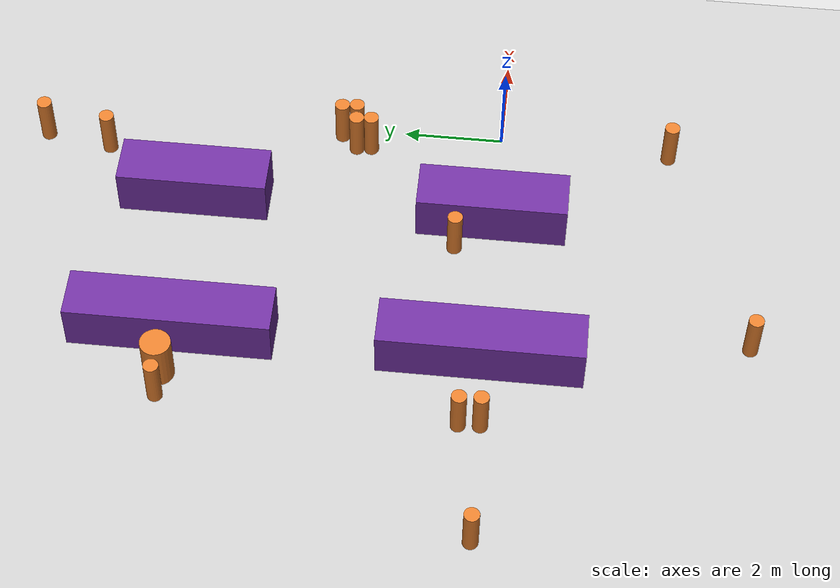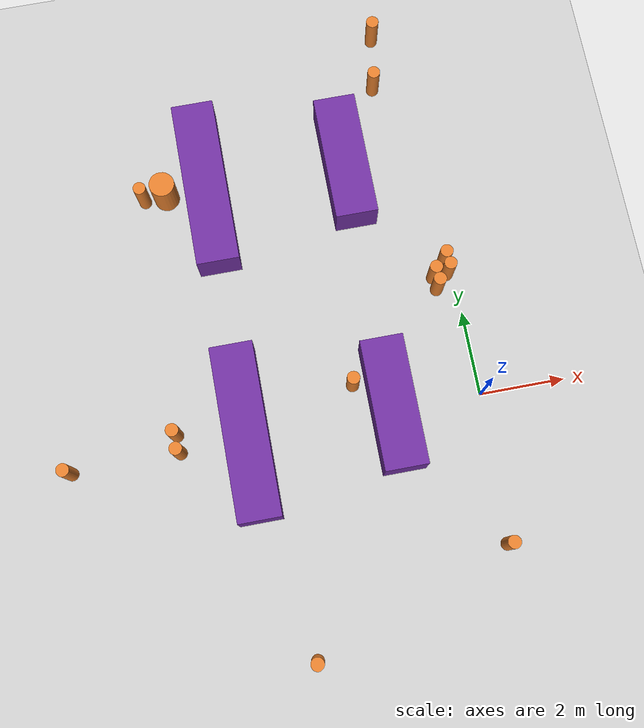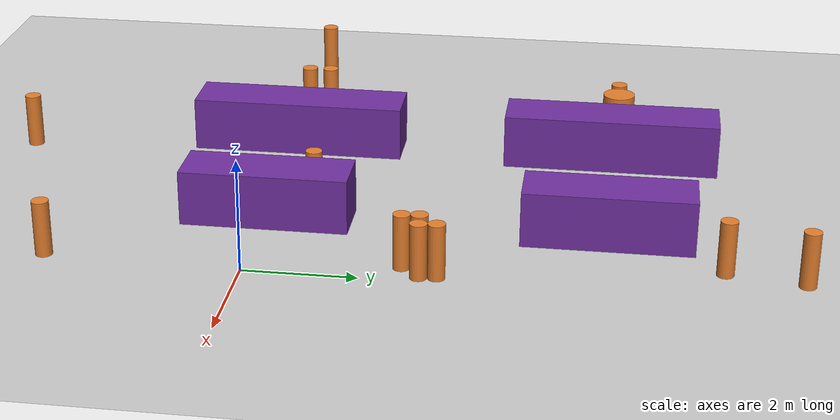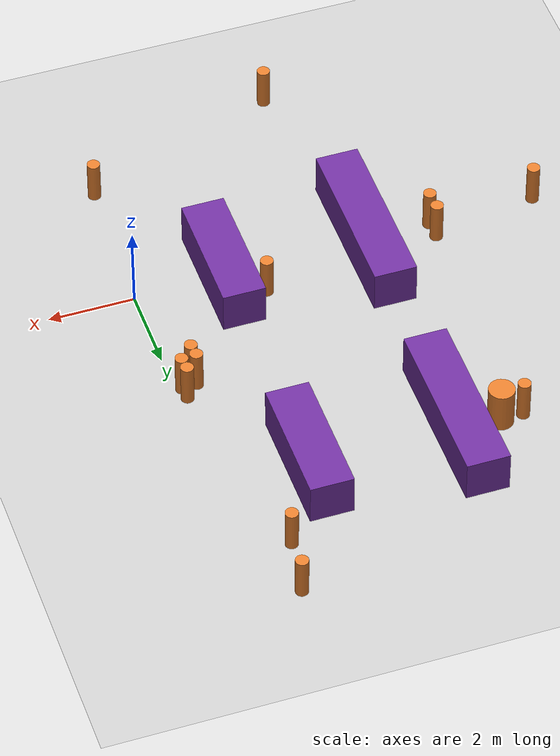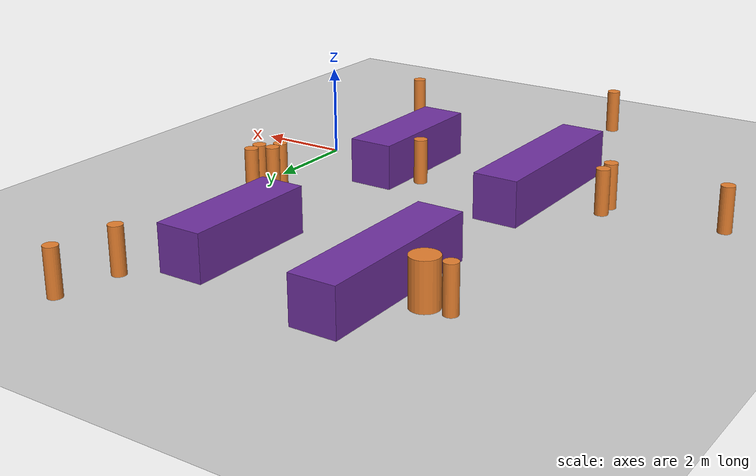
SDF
<sdf version="1.7">
 <world name="default">
  <model name="ground_plane">
   <static>1</static>
   <link name="link">
    <collision name="collision">
     <geometry><plane><normal>0 0 1</normal><size>100 100</size></plane></geometry>
     <surface>
      <contact><collide_bitmask>65535</collide_bitmask></contact>
      <friction><ode><mu>100</mu><mu2>50</mu2></ode></friction>
     </surface>
    </collision>
    <visual name="visual">
     <cast_shadows>0</cast_shadows>
     <geometry><plane><normal>0 0 1</normal><size>100 100</size></plane></geometry>
     <material>
      <script><uri>file://media/materials/scripts/gazebo.material</uri><name>Gazebo/Grey</name></script>
     </material>
    </visual>
   </link>
  </model>
  <model name="B_1_4_0">
   <link name="link_0">
    <inertial>
     <mass>40</mass>
     <inertia><ixx>56.6667</ixx><ixy>0</ixy><ixz>0</ixz><iyy>6.66667</iyy><iyz>0</iyz><izz>56.6667</izz></inertia>
    </inertial>
    <visual name="visual">
     <geometry><box><size>1 4 1</size></box></geometry>
     <material>
      <lighting>1</lighting>
      <script><uri>file://media/materials/scripts/gazebo.material</uri><name>Gazebo/Grey</name></script>
      <shader type="pixel"><normal_map>__default__</normal_map></shader>
      <ambient>0.44 0.19 0.63 1</ambient>
      <diffuse>0.7 0.7 0.7 1</diffuse>
      <specular>0.01 0.01 0.01 1</specular>
      <emissive>0 0 0 1</emissive>
     </material>
    </visual>
    <collision name="collision">
     <geometry><box><size>1 4 1</size></box></geometry>
     <surface>
      <friction>
       <ode><mu>1</mu><mu2>1</mu2><fdir1>0 0 0</fdir1><slip1>0</slip1><slip2>0</slip2></ode>
       <torsional>
        <coefficient>1</coefficient>
        <patch_radius>0</patch_radius>
        <surface_radius>0</surface_radius>
        <use_patch_radius>1</use_patch_radius>
        <ode><slip>0</slip></ode>
       </torsional>
      </friction>
      <bounce><restitution_coefficient>0</restitution_coefficient><threshold>1e+06</threshold></bounce>
      <contact>
       <collide_without_contact>0</collide_without_contact>
       <collide_without_contact_bitmask>1</collide_without_contact_bitmask>
       <collide_bitmask>1</collide_bitmask>
       <ode>
        <soft_cfm>0</soft_cfm>
        <soft_erp>0.2</soft_erp>
        <kp>1e+13</kp>
        <kd>1</kd>
        <max_vel>0.01</max_vel>
        <min_depth>0</min_depth>
       </ode>
       <bullet>
        <split_impulse>1</split_impulse>
        <split_impulse_penetration_threshold>-0.01</split_impulse_penetration_threshold>
        <soft_cfm>0</soft_cfm>
        <soft_erp>0.2</soft_erp>
        <kp>1e+13</kp>
        <kd>1</kd>
       </bullet>
      </contact>
     </surface>
    </collision>
   </link>
   <static>0</static>
   <pose>-5.4852 0.015964 0.5 0 -0 0</pose>
  </model>
  <model name="B_1_4_5">
   <link name="link_0">
    <inertial>
     <mass>40</mass>
     <inertia><ixx>56.6667</ixx><ixy>0</ixy><ixz>0</ixz><iyy>6.66667</iyy><iyz>0</iyz><izz>56.6667</izz></inertia>
    </inertial>
    <visual name="visual">
     <geometry><box><size>1 4 1</size></box></geometry>
     <material>
      <lighting>1</lighting>
      <script><uri>file://media/materials/scripts/gazebo.material</uri><name>Gazebo/Grey</name></script>
      <shader type="pixel"><normal_map>__default__</normal_map></shader>
      <ambient>0.44 0.19 0.63 1</ambient>
      <diffuse>0.7 0.7 0.7 1</diffuse>
      <specular>0.01 0.01 0.01 1</specular>
      <emissive>0 0 0 1</emissive>
     </material>
    </visual>
    <collision name="collision">
     <geometry><box><size>1 4 1</size></box></geometry>
     <surface>
      <friction>
       <ode><mu>1</mu><mu2>1</mu2><fdir1>0 0 0</fdir1><slip1>0</slip1><slip2>0</slip2></ode>
       <torsional>
        <coefficient>1</coefficient>
        <patch_radius>0</patch_radius>
        <surface_radius>0</surface_radius>
        <use_patch_radius>1</use_patch_radius>
        <ode><slip>0</slip></ode>
       </torsional>
      </friction>
      <bounce><restitution_coefficient>0</restitution_coefficient><threshold>1e+06</threshold></bounce>
      <contact>
       <collide_without_contact>0</collide_without_contact>
       <collide_without_contact_bitmask>1</collide_without_contact_bitmask>
       <collide_bitmask>1</collide_bitmask>
       <ode>
        <soft_cfm>0</soft_cfm>
        <soft_erp>0.2</soft_erp>
        <kp>1e+13</kp>
        <kd>1</kd>
        <max_vel>0.01</max_vel>
        <min_depth>0</min_depth>
       </ode>
       <bullet>
        <split_impulse>1</split_impulse>
        <split_impulse_penetration_threshold>-0.01</split_impulse_penetration_threshold>
        <soft_cfm>0</soft_cfm>
        <soft_erp>0.2</soft_erp>
        <kp>1e+13</kp>
        <kd>1</kd>
       </bullet>
      </contact>
     </surface>
    </collision>
   </link>
   <static>0</static>
   <pose>-5.44605 6.01143 0.5 0 -0 0</pose>
  </model>
  <model name="B_1_3_1">
   <link name="link_1">
    <inertial>
     <mass>30</mass>
     <inertia><ixx>25</ixx><ixy>0</ixy><ixz>0</ixz><iyy>5</iyy><iyz>0</iyz><izz>25</izz></inertia>
    </inertial>
    <visual name="visual">
     <geometry><box><size>1 3 1</size></box></geometry>
     <material>
      <lighting>1</lighting>
      <script><uri>file://media/materials/scripts/gazebo.material</uri><name>Gazebo/Grey</name></script>
      <shader type="pixel"><normal_map>__default__</normal_map></shader>
      <ambient>0.44 0.19 0.63 1</ambient>
      <diffuse>0.7 0.7 0.7 1</diffuse>
      <specular>0.01 0.01 0.01 1</specular>
      <emissive>0 0 0 1</emissive>
     </material>
    </visual>
    <collision name="collision">
     <geometry><box><size>1 3 1</size></box></geometry>
     <surface>
      <friction>
       <ode><mu>1</mu><mu2>1</mu2><fdir1>0 0 0</fdir1><slip1>0</slip1><slip2>0</slip2></ode>
       <torsional>
        <coefficient>1</coefficient>
        <patch_radius>0</patch_radius>
        <surface_radius>0</surface_radius>
        <use_patch_radius>1</use_patch_radius>
        <ode><slip>0</slip></ode>
       </torsional>
      </friction>
      <bounce><restitution_coefficient>0</restitution_coefficient><threshold>1e+06</threshold></bounce>
      <contact>
       <collide_without_contact>0</collide_without_contact>
       <collide_without_contact_bitmask>1</collide_without_contact_bitmask>
       <collide_bitmask>1</collide_bitmask>
       <ode>
        <soft_cfm>0</soft_cfm>
        <soft_erp>0.2</soft_erp>
        <kp>1e+13</kp>
        <kd>1</kd>
        <max_vel>0.01</max_vel>
        <min_depth>0</min_depth>
       </ode>
       <bullet>
        <split_impulse>1</split_impulse>
        <split_impulse_penetration_threshold>-0.01</split_impulse_penetration_threshold>
        <soft_cfm>0</soft_cfm>
        <soft_erp>0.2</soft_erp>
        <kp>1e+13</kp>
        <kd>1</kd>
       </bullet>
      </contact>
     </surface>
    </collision>
   </link>
   <static>0</static>
   <pose>-2.0578 6.06122 0.5 0 -0 0</pose>
  </model>
  <model name="B_1_3_2">
   <link name="link_1">
    <inertial>
     <mass>30</mass>
     <inertia><ixx>25</ixx><ixy>0</ixy><ixz>0</ixz><iyy>5</iyy><iyz>0</iyz><izz>25</izz></inertia>
    </inertial>
    <visual name="visual">
     <geometry><box><size>1 3 1</size></box></geometry>
     <material>
      <lighting>1</lighting>
      <script><uri>file://media/materials/scripts/gazebo.material</uri><name>Gazebo/Grey</name></script>
      <shader type="pixel"><normal_map>__default__</normal_map></shader>
      <ambient>0.44 0.19 0.63 1</ambient>
      <diffuse>0.7 0.7 0.7 1</diffuse>
      <specular>0.01 0.01 0.01 1</specular>
      <emissive>0 0 0 1</emissive>
     </material>
    </visual>
    <collision name="collision">
     <geometry><box><size>1 3 1</size></box></geometry>
     <surface>
      <friction>
       <ode><mu>1</mu><mu2>1</mu2><fdir1>0 0 0</fdir1><slip1>0</slip1><slip2>0</slip2></ode>
       <torsional>
        <coefficient>1</coefficient>
        <patch_radius>0</patch_radius>
        <surface_radius>0</surface_radius>
        <use_patch_radius>1</use_patch_radius>
        <ode><slip>0</slip></ode>
       </torsional>
      </friction>
      <bounce><restitution_coefficient>0</restitution_coefficient><threshold>1e+06</threshold></bounce>
      <contact>
       <collide_without_contact>0</collide_without_contact>
       <collide_without_contact_bitmask>1</collide_without_contact_bitmask>
       <collide_bitmask>1</collide_bitmask>
       <ode>
        <soft_cfm>0</soft_cfm>
        <soft_erp>0.2</soft_erp>
        <kp>1e+13</kp>
        <kd>1</kd>
        <max_vel>0.01</max_vel>
        <min_depth>0</min_depth>
       </ode>
       <bullet>
        <split_impulse>1</split_impulse>
        <split_impulse_penetration_threshold>-0.01</split_impulse_penetration_threshold>
        <soft_cfm>0</soft_cfm>
        <soft_erp>0.2</soft_erp>
        <kp>1e+13</kp>
        <kd>1</kd>
       </bullet>
      </contact>
     </surface>
    </collision>
   </link>
   <static>0</static>
   <pose>-2.09356 0.051228 0.5 0 -0 0</pose>
  </model>
  <model name="C_03">
   <link name="link_3">
    <inertial>
     <mass>2.82743</mass>
     <inertia>
      <ixx>0.299237</ixx>
      <ixy>0</ixy>
      <ixz>0</ixz>
      <iyy>0.299237</iyy>
      <iyz>0</iyz>
      <izz>0.127235</izz>
     </inertia>
    </inertial>
    <visual name="visual">
     <geometry><cylinder><radius>0.15</radius><length>1</length></cylinder></geometry>
     <material>
      <lighting>1</lighting>
      <script><uri>file://media/materials/scripts/gazebo.material</uri><name>Gazebo/Grey</name></script>
      <shader type="pixel"><normal_map>__default__</normal_map></shader>
      <ambient>0.9 0.5 0.18 1</ambient>
      <diffuse>0.7 0.7 0.7 1</diffuse>
      <specular>0.01 0.01 0.01 1</specular>
      <emissive>0 0 0 1</emissive>
     </material>
    </visual>
    <collision name="collision">
     <geometry><cylinder><radius>0.15</radius><length>1</length></cylinder></geometry>
     <surface>
      <friction>
       <ode><mu>1</mu><mu2>1</mu2><fdir1>0 0 0</fdir1><slip1>0</slip1><slip2>0</slip2></ode>
       <torsional>
        <coefficient>1</coefficient>
        <patch_radius>0</patch_radius>
        <surface_radius>0</surface_radius>
        <use_patch_radius>1</use_patch_radius>
        <ode><slip>0</slip></ode>
       </torsional>
      </friction>
      <bounce><restitution_coefficient>0</restitution_coefficient><threshold>1e+06</threshold></bounce>
      <contact>
       <collide_without_contact>0</collide_without_contact>
       <collide_without_contact_bitmask>1</collide_without_contact_bitmask>
       <collide_bitmask>1</collide_bitmask>
       <ode>
        <soft_cfm>0</soft_cfm>
        <soft_erp>0.2</soft_erp>
        <kp>1e+13</kp>
        <kd>1</kd>
        <max_vel>0.01</max_vel>
        <min_depth>0</min_depth>
       </ode>
       <bullet>
        <split_impulse>1</split_impulse>
        <split_impulse_penetration_threshold>-0.01</split_impulse_penetration_threshold>
        <soft_cfm>0</soft_cfm>
        <soft_erp>0.2</soft_erp>
        <kp>1e+13</kp>
        <kd>1</kd>
       </bullet>
      </contact>
     </surface>
    </collision>
   </link>
   <static>0</static>
   <pose>-0.508974 2.95827 0.499805 0 -0 6.7e-05</pose>
  </model>
  <model name="C_03_0">
   <link name="link_3">
    <inertial>
     <mass>2.82743</mass>
     <inertia>
      <ixx>0.299237</ixx>
      <ixy>0</ixy>
      <ixz>0</ixz>
      <iyy>0.299237</iyy>
      <iyz>0</iyz>
      <izz>0.127235</izz>
     </inertia>
    </inertial>
    <visual name="visual">
     <geometry><cylinder><radius>0.15</radius><length>1</length></cylinder></geometry>
     <material>
      <lighting>1</lighting>
      <script><uri>file://media/materials/scripts/gazebo.material</uri><name>Gazebo/Grey</name></script>
      <shader type="pixel"><normal_map>__default__</normal_map></shader>
      <ambient>0.9 0.5 0.18 1</ambient>
      <diffuse>0.7 0.7 0.7 1</diffuse>
      <specular>0.01 0.01 0.01 1</specular>
      <emissive>0 0 0 1</emissive>
     </material>
    </visual>
    <collision name="collision">
     <geometry><cylinder><radius>0.15</radius><length>1</length></cylinder></geometry>
     <surface>
      <friction>
       <ode><mu>1</mu><mu2>1</mu2><fdir1>0 0 0</fdir1><slip1>0</slip1><slip2>0</slip2></ode>
       <torsional>
        <coefficient>1</coefficient>
        <patch_radius>0</patch_radius>
        <surface_radius>0</surface_radius>
        <use_patch_radius>1</use_patch_radius>
        <ode><slip>0</slip></ode>
       </torsional>
      </friction>
      <bounce><restitution_coefficient>0</restitution_coefficient><threshold>1e+06</threshold></bounce>
      <contact>
       <collide_without_contact>0</collide_without_contact>
       <collide_without_contact_bitmask>1</collide_without_contact_bitmask>
       <collide_bitmask>1</collide_bitmask>
       <ode>
        <soft_cfm>0</soft_cfm>
        <soft_erp>0.2</soft_erp>
        <kp>1e+13</kp>
        <kd>1</kd>
        <max_vel>0.01</max_vel>
        <min_depth>0</min_depth>
       </ode>
       <bullet>
        <split_impulse>1</split_impulse>
        <split_impulse_penetration_threshold>-0.01</split_impulse_penetration_threshold>
        <soft_cfm>0</soft_cfm>
        <soft_erp>0.2</soft_erp>
        <kp>1e+13</kp>
        <kd>1</kd>
       </bullet>
      </contact>
     </surface>
    </collision>
   </link>
   <static>0</static>
   <pose>-0.163929 2.98337 0.499805 0 -0 6.5e-05</pose>
  </model>
  <model name="C_03_2">
   <link name="link_3">
    <inertial>
     <mass>2.82743</mass>
     <inertia>
      <ixx>0.299237</ixx>
      <ixy>0</ixy>
      <ixz>0</ixz>
      <iyy>0.299237</iyy>
      <iyz>0</iyz>
      <izz>0.127235</izz>
     </inertia>
    </inertial>
    <visual name="visual">
     <geometry><cylinder><radius>0.15</radius><length>1</length></cylinder></geometry>
     <material>
      <lighting>1</lighting>
      <script><uri>file://media/materials/scripts/gazebo.material</uri><name>Gazebo/Grey</name></script>
      <shader type="pixel"><normal_map>__default__</normal_map></shader>
      <ambient>0.9 0.5 0.18 1</ambient>
      <diffuse>0.7 0.7 0.7 1</diffuse>
      <specular>0.01 0.01 0.01 1</specular>
      <emissive>0 0 0 1</emissive>
     </material>
    </visual>
    <collision name="collision">
     <geometry><cylinder><radius>0.15</radius><length>1</length></cylinder></geometry>
     <surface>
      <friction>
       <ode><mu>1</mu><mu2>1</mu2><fdir1>0 0 0</fdir1><slip1>0</slip1><slip2>0</slip2></ode>
       <torsional>
        <coefficient>1</coefficient>
        <patch_radius>0</patch_radius>
        <surface_radius>0</surface_radius>
        <use_patch_radius>1</use_patch_radius>
        <ode><slip>0</slip></ode>
       </torsional>
      </friction>
      <bounce><restitution_coefficient>0</restitution_coefficient><threshold>1e+06</threshold></bounce>
      <contact>
       <collide_without_contact>0</collide_without_contact>
       <collide_without_contact_bitmask>1</collide_without_contact_bitmask>
       <collide_bitmask>1</collide_bitmask>
       <ode>
        <soft_cfm>0</soft_cfm>
        <soft_erp>0.2</soft_erp>
        <kp>1e+13</kp>
        <kd>1</kd>
        <max_vel>0.01</max_vel>
        <min_depth>0</min_depth>
       </ode>
       <bullet>
        <split_impulse>1</split_impulse>
        <split_impulse_penetration_threshold>-0.01</split_impulse_penetration_threshold>
        <soft_cfm>0</soft_cfm>
        <soft_erp>0.2</soft_erp>
        <kp>1e+13</kp>
        <kd>1</kd>
       </bullet>
      </contact>
     </surface>
    </collision>
   </link>
   <static>0</static>
   <pose>-0.48027 2.65932 0.499805 0 -0 6.1e-05</pose>
  </model>
  <model name="C_03_3">
   <link name="link_3">
    <inertial>
     <mass>2.82743</mass>
     <inertia>
      <ixx>0.299237</ixx>
      <ixy>0</ixy>
      <ixz>0</ixz>
      <iyy>0.299237</iyy>
      <iyz>0</iyz>
      <izz>0.127235</izz>
     </inertia>
    </inertial>
    <visual name="visual">
     <geometry><cylinder><radius>0.15</radius><length>1</length></cylinder></geometry>
     <material>
      <lighting>1</lighting>
      <script><uri>file://media/materials/scripts/gazebo.material</uri><name>Gazebo/Grey</name></script>
      <shader type="pixel"><normal_map>__default__</normal_map></shader>
      <ambient>0.9 0.5 0.18 1</ambient>
      <diffuse>0.7 0.7 0.7 1</diffuse>
      <specular>0.01 0.01 0.01 1</specular>
      <emissive>0 0 0 1</emissive>
     </material>
    </visual>
    <collision name="collision">
     <geometry><cylinder><radius>0.15</radius><length>1</length></cylinder></geometry>
     <surface>
      <friction>
       <ode><mu>1</mu><mu2>1</mu2><fdir1>0 0 0</fdir1><slip1>0</slip1><slip2>0</slip2></ode>
       <torsional>
        <coefficient>1</coefficient>
        <patch_radius>0</patch_radius>
        <surface_radius>0</surface_radius>
        <use_patch_radius>1</use_patch_radius>
        <ode><slip>0</slip></ode>
       </torsional>
      </friction>
      <bounce><restitution_coefficient>0</restitution_coefficient><threshold>1e+06</threshold></bounce>
      <contact>
       <collide_without_contact>0</collide_without_contact>
       <collide_without_contact_bitmask>1</collide_without_contact_bitmask>
       <collide_bitmask>1</collide_bitmask>
       <ode>
        <soft_cfm>0</soft_cfm>
        <soft_erp>0.2</soft_erp>
        <kp>1e+13</kp>
        <kd>1</kd>
        <max_vel>0.01</max_vel>
        <min_depth>0</min_depth>
       </ode>
       <bullet>
        <split_impulse>1</split_impulse>
        <split_impulse_penetration_threshold>-0.01</split_impulse_penetration_threshold>
        <soft_cfm>0</soft_cfm>
        <soft_erp>0.2</soft_erp>
        <kp>1e+13</kp>
        <kd>1</kd>
       </bullet>
      </contact>
     </surface>
    </collision>
   </link>
   <static>0</static>
   <pose>-0.192897 3.28395 0.499805 0 -0 5.3e-05</pose>
  </model>
  <model name="C_03_6">
   <link name="link_3">
    <inertial>
     <mass>2.82743</mass>
     <inertia>
      <ixx>0.299237</ixx>
      <ixy>0</ixy>
      <ixz>0</ixz>
      <iyy>0.299237</iyy>
      <iyz>0</iyz>
      <izz>0.127235</izz>
     </inertia>
    </inertial>
    <visual name="visual">
     <geometry><cylinder><radius>0.15</radius><length>1</length></cylinder></geometry>
     <material>
      <lighting>1</lighting>
      <script><uri>file://media/materials/scripts/gazebo.material</uri><name>Gazebo/Grey</name></script>
      <shader type="pixel"><normal_map>__default__</normal_map></shader>
      <ambient>0.9 0.5 0.18 1</ambient>
      <diffuse>0.7 0.7 0.7 1</diffuse>
      <specular>0.01 0.01 0.01 1</specular>
      <emissive>0 0 0 1</emissive>
     </material>
    </visual>
    <collision name="collision">
     <geometry><cylinder><radius>0.15</radius><length>1</length></cylinder></geometry>
     <surface>
      <friction>
       <ode><mu>1</mu><mu2>1</mu2><fdir1>0 0 0</fdir1><slip1>0</slip1><slip2>0</slip2></ode>
       <torsional>
        <coefficient>1</coefficient>
        <patch_radius>0</patch_radius>
        <surface_radius>0</surface_radius>
        <use_patch_radius>1</use_patch_radius>
        <ode><slip>0</slip></ode>
       </torsional>
      </friction>
      <bounce><restitution_coefficient>0</restitution_coefficient><threshold>1e+06</threshold></bounce>
      <contact>
       <collide_without_contact>0</collide_without_contact>
       <collide_without_contact_bitmask>1</collide_without_contact_bitmask>
       <collide_bitmask>1</collide_bitmask>
       <ode>
        <soft_cfm>0</soft_cfm>
        <soft_erp>0.2</soft_erp>
        <kp>1e+13</kp>
        <kd>1</kd>
        <max_vel>0.01</max_vel>
        <min_depth>0</min_depth>
       </ode>
       <bullet>
        <split_impulse>1</split_impulse>
        <split_impulse_penetration_threshold>-0.01</split_impulse_penetration_threshold>
        <soft_cfm>0</soft_cfm>
        <soft_erp>0.2</soft_erp>
        <kp>1e+13</kp>
        <kd>1</kd>
       </bullet>
      </contact>
     </surface>
    </collision>
   </link>
   <static>0</static>
   <pose>-0.140062 -3.44596 0.499805 0 -0 4.5e-05</pose>
  </model>
  <model name="C_03_7">
   <link name="link_3">
    <inertial>
     <mass>2.82743</mass>
     <inertia>
      <ixx>0.299237</ixx>
      <ixy>0</ixy>
      <ixz>0</ixz>
      <iyy>0.299237</iyy>
      <iyz>0</iyz>
      <izz>0.127235</izz>
     </inertia>
    </inertial>
    <visual name="visual">
     <geometry><cylinder><radius>0.15</radius><length>1</length></cylinder></geometry>
     <material>
      <lighting>1</lighting>
      <script><uri>file://media/materials/scripts/gazebo.material</uri><name>Gazebo/Grey</name></script>
      <shader type="pixel"><normal_map>__default__</normal_map></shader>
      <ambient>0.9 0.5 0.18 1</ambient>
      <diffuse>0.7 0.7 0.7 1</diffuse>
      <specular>0.01 0.01 0.01 1</specular>
      <emissive>0 0 0 1</emissive>
     </material>
    </visual>
    <collision name="collision">
     <geometry><cylinder><radius>0.15</radius><length>1</length></cylinder></geometry>
     <surface>
      <friction>
       <ode><mu>1</mu><mu2>1</mu2><fdir1>0 0 0</fdir1><slip1>0</slip1><slip2>0</slip2></ode>
       <torsional>
        <coefficient>1</coefficient>
        <patch_radius>0</patch_radius>
        <surface_radius>0</surface_radius>
        <use_patch_radius>1</use_patch_radius>
        <ode><slip>0</slip></ode>
       </torsional>
      </friction>
      <bounce><restitution_coefficient>0</restitution_coefficient><threshold>1e+06</threshold></bounce>
      <contact>
       <collide_without_contact>0</collide_without_contact>
       <collide_without_contact_bitmask>1</collide_without_contact_bitmask>
       <collide_bitmask>1</collide_bitmask>
       <ode>
        <soft_cfm>0</soft_cfm>
        <soft_erp>0.2</soft_erp>
        <kp>1e+13</kp>
        <kd>1</kd>
        <max_vel>0.01</max_vel>
        <min_depth>0</min_depth>
       </ode>
       <bullet>
        <split_impulse>1</split_impulse>
        <split_impulse_penetration_threshold>-0.01</split_impulse_penetration_threshold>
        <soft_cfm>0</soft_cfm>
        <soft_erp>0.2</soft_erp>
        <kp>1e+13</kp>
        <kd>1</kd>
       </bullet>
      </contact>
     </surface>
    </collision>
   </link>
   <static>0</static>
   <pose>-0.754801 9.36093 0.499805 0 -0 4.4e-05</pose>
  </model>
  <model name="C_03_10">
   <link name="link_3">
    <inertial>
     <mass>2.82743</mass>
     <inertia>
      <ixx>0.299237</ixx>
      <ixy>0</ixy>
      <ixz>0</ixz>
      <iyy>0.299237</iyy>
      <iyz>0</iyz>
      <izz>0.127235</izz>
     </inertia>
    </inertial>
    <visual name="visual">
     <geometry><cylinder><radius>0.15</radius><length>1</length></cylinder></geometry>
     <material>
      <lighting>1</lighting>
      <script><uri>file://media/materials/scripts/gazebo.material</uri><name>Gazebo/Grey</name></script>
      <shader type="pixel"><normal_map>__default__</normal_map></shader>
      <ambient>0.9 0.5 0.18 1</ambient>
      <diffuse>0.7 0.7 0.7 1</diffuse>
      <specular>0.01 0.01 0.01 1</specular>
      <emissive>0 0 0 1</emissive>
     </material>
    </visual>
    <collision name="collision">
     <geometry><cylinder><radius>0.15</radius><length>1</length></cylinder></geometry>
     <surface>
      <friction>
       <ode><mu>1</mu><mu2>1</mu2><fdir1>0 0 0</fdir1><slip1>0</slip1><slip2>0</slip2></ode>
       <torsional>
        <coefficient>1</coefficient>
        <patch_radius>0</patch_radius>
        <surface_radius>0</surface_radius>
        <use_patch_radius>1</use_patch_radius>
        <ode><slip>0</slip></ode>
       </torsional>
      </friction>
      <bounce><restitution_coefficient>0</restitution_coefficient><threshold>1e+06</threshold></bounce>
      <contact>
       <collide_without_contact>0</collide_without_contact>
       <collide_without_contact_bitmask>1</collide_without_contact_bitmask>
       <collide_bitmask>1</collide_bitmask>
       <ode>
        <soft_cfm>0</soft_cfm>
        <soft_erp>0.2</soft_erp>
        <kp>1e+13</kp>
        <kd>1</kd>
        <max_vel>0.01</max_vel>
        <min_depth>0</min_depth>
       </ode>
       <bullet>
        <split_impulse>1</split_impulse>
        <split_impulse_penetration_threshold>-0.01</split_impulse_penetration_threshold>
        <soft_cfm>0</soft_cfm>
        <soft_erp>0.2</soft_erp>
        <kp>1e+13</kp>
        <kd>1</kd>
       </bullet>
      </contact>
     </surface>
    </collision>
   </link>
   <static>0</static>
   <pose>-0.981215 8.03345 0.499805 0 -0 0</pose>
  </model>
  <model name="C_03_13">
   <link name="link_3">
    <inertial>
     <mass>2.82743</mass>
     <inertia>
      <ixx>0.299237</ixx>
      <ixy>0</ixy>
      <ixz>0</ixz>
      <iyy>0.299237</iyy>
      <iyz>0</iyz>
      <izz>0.127235</izz>
     </inertia>
    </inertial>
    <visual name="visual">
     <geometry><cylinder><radius>0.15</radius><length>1</length></cylinder></geometry>
     <material>
      <lighting>1</lighting>
      <script><uri>file://media/materials/scripts/gazebo.material</uri><name>Gazebo/Grey</name></script>
      <shader type="pixel"><normal_map>__default__</normal_map></shader>
      <ambient>0.9 0.5 0.18 1</ambient>
      <diffuse>0.7 0.7 0.7 1</diffuse>
      <specular>0.01 0.01 0.01 1</specular>
      <emissive>0 0 0 1</emissive>
     </material>
    </visual>
    <collision name="collision">
     <geometry><cylinder><radius>0.15</radius><length>1</length></cylinder></geometry>
     <surface>
      <friction>
       <ode><mu>1</mu><mu2>1</mu2><fdir1>0 0 0</fdir1><slip1>0</slip1><slip2>0</slip2></ode>
       <torsional>
        <coefficient>1</coefficient>
        <patch_radius>0</patch_radius>
        <surface_radius>0</surface_radius>
        <use_patch_radius>1</use_patch_radius>
        <ode><slip>0</slip></ode>
       </torsional>
      </friction>
      <bounce><restitution_coefficient>0</restitution_coefficient><threshold>1e+06</threshold></bounce>
      <contact>
       <collide_without_contact>0</collide_without_contact>
       <collide_without_contact_bitmask>1</collide_without_contact_bitmask>
       <collide_bitmask>1</collide_bitmask>
       <ode>
        <soft_cfm>0</soft_cfm>
        <soft_erp>0.2</soft_erp>
        <kp>1e+13</kp>
        <kd>1</kd>
        <max_vel>0.01</max_vel>
        <min_depth>0</min_depth>
       </ode>
       <bullet>
        <split_impulse>1</split_impulse>
        <split_impulse_penetration_threshold>-0.01</split_impulse_penetration_threshold>
        <soft_cfm>0</soft_cfm>
        <soft_erp>0.2</soft_erp>
        <kp>1e+13</kp>
        <kd>1</kd>
       </bullet>
      </contact>
     </surface>
    </collision>
   </link>
   <static>0</static>
   <pose>-9.57319 -0.114649 0.499805 0 -0 0</pose>
  </model>
  <model name="C_03_15">
   <link name="link_3">
    <inertial>
     <mass>2.82743</mass>
     <inertia>
      <ixx>0.299237</ixx>
      <ixy>0</ixy>
      <ixz>0</ixz>
      <iyy>0.299237</iyy>
      <iyz>0</iyz>
      <izz>0.127235</izz>
     </inertia>
    </inertial>
    <visual name="visual">
     <geometry><cylinder><radius>0.15</radius><length>1</length></cylinder></geometry>
     <material>
      <lighting>1</lighting>
      <script><uri>file://media/materials/scripts/gazebo.material</uri><name>Gazebo/Grey</name></script>
      <shader type="pixel"><normal_map>__default__</normal_map></shader>
      <ambient>0.9 0.5 0.18 1</ambient>
      <diffuse>0.7 0.7 0.7 1</diffuse>
      <specular>0.01 0.01 0.01 1</specular>
      <emissive>0 0 0 1</emissive>
     </material>
    </visual>
    <collision name="collision">
     <geometry><cylinder><radius>0.15</radius><length>1</length></cylinder></geometry>
     <surface>
      <friction>
       <ode><mu>1</mu><mu2>1</mu2><fdir1>0 0 0</fdir1><slip1>0</slip1><slip2>0</slip2></ode>
       <torsional>
        <coefficient>1</coefficient>
        <patch_radius>0</patch_radius>
        <surface_radius>0</surface_radius>
        <use_patch_radius>1</use_patch_radius>
        <ode><slip>0</slip></ode>
       </torsional>
      </friction>
      <bounce><restitution_coefficient>0</restitution_coefficient><threshold>1e+06</threshold></bounce>
      <contact>
       <collide_without_contact>0</collide_without_contact>
       <collide_without_contact_bitmask>1</collide_without_contact_bitmask>
       <collide_bitmask>1</collide_bitmask>
       <ode>
        <soft_cfm>0</soft_cfm>
        <soft_erp>0.2</soft_erp>
        <kp>1e+13</kp>
        <kd>1</kd>
        <max_vel>0.01</max_vel>
        <min_depth>0</min_depth>
       </ode>
       <bullet>
        <split_impulse>1</split_impulse>
        <split_impulse_penetration_threshold>-0.01</split_impulse_penetration_threshold>
        <soft_cfm>0</soft_cfm>
        <soft_erp>0.2</soft_erp>
        <kp>1e+13</kp>
        <kd>1</kd>
       </bullet>
      </contact>
     </surface>
    </collision>
   </link>
   <static>0</static>
   <pose>-7.07855 0.32144 0.499805 0 0 0</pose>
  </model>
  <model name="C_03_19">
   <link name="link_3">
    <inertial>
     <mass>2.82743</mass>
     <inertia>
      <ixx>0.299237</ixx>
      <ixy>0</ixy>
      <ixz>0</ixz>
      <iyy>0.299237</iyy>
      <iyz>0</iyz>
      <izz>0.127235</izz>
     </inertia>
    </inertial>
    <visual name="visual">
     <geometry><cylinder><radius>0.15</radius><length>1</length></cylinder></geometry>
     <material>
      <lighting>1</lighting>
      <script><uri>file://media/materials/scripts/gazebo.material</uri><name>Gazebo/Grey</name></script>
      <shader type="pixel"><normal_map>__default__</normal_map></shader>
      <ambient>0.9 0.5 0.18 1</ambient>
      <diffuse>0.7 0.7 0.7 1</diffuse>
      <specular>0.01 0.01 0.01 1</specular>
      <emissive>0 0 0 1</emissive>
     </material>
    </visual>
    <collision name="collision">
     <geometry><cylinder><radius>0.15</radius><length>1</length></cylinder></geometry>
     <surface>
      <friction>
       <ode><mu>1</mu><mu2>1</mu2><fdir1>0 0 0</fdir1><slip1>0</slip1><slip2>0</slip2></ode>
       <torsional>
        <coefficient>1</coefficient>
        <patch_radius>0</patch_radius>
        <surface_radius>0</surface_radius>
        <use_patch_radius>1</use_patch_radius>
        <ode><slip>0</slip></ode>
       </torsional>
      </friction>
      <bounce><restitution_coefficient>0</restitution_coefficient><threshold>1e+06</threshold></bounce>
      <contact>
       <collide_without_contact>0</collide_without_contact>
       <collide_without_contact_bitmask>1</collide_without_contact_bitmask>
       <collide_bitmask>1</collide_bitmask>
       <ode>
        <soft_cfm>0</soft_cfm>
        <soft_erp>0.2</soft_erp>
        <kp>1e+13</kp>
        <kd>1</kd>
        <max_vel>0.01</max_vel>
        <min_depth>0</min_depth>
       </ode>
       <bullet>
        <split_impulse>1</split_impulse>
        <split_impulse_penetration_threshold>-0.01</split_impulse_penetration_threshold>
        <soft_cfm>0</soft_cfm>
        <soft_erp>0.2</soft_erp>
        <kp>1e+13</kp>
        <kd>1</kd>
       </bullet>
      </contact>
     </surface>
    </collision>
   </link>
   <static>0</static>
   <pose>-7.05806 -0.096574 0.499805 0 -0 1.9e-05</pose>
  </model>
  <model name="C_06">
   <link name="link_3">
    <inertial>
     <mass>2.82743</mass>
     <inertia>
      <ixx>0.299237</ixx>
      <ixy>0</ixy>
      <ixz>0</ixz>
      <iyy>0.299237</iyy>
      <iyz>0</iyz>
      <izz>0.127235</izz>
     </inertia>
    </inertial>
    <visual name="visual">
     <geometry><cylinder><radius>0.3</radius><length>1</length></cylinder></geometry>
     <material>
      <lighting>1</lighting>
      <script><uri>file://media/materials/scripts/gazebo.material</uri><name>Gazebo/Grey</name></script>
      <shader type="pixel"><normal_map>__default__</normal_map></shader>
      <ambient>0.9 0.5 0.18 1</ambient>
      <diffuse>0.7 0.7 0.7 1</diffuse>
      <specular>0.01 0.01 0.01 1</specular>
      <emissive>0 0 0 1</emissive>
     </material>
    </visual>
    <collision name="collision">
     <geometry><cylinder><radius>0.3</radius><length>1</length></cylinder></geometry>
     <surface>
      <friction>
       <ode><mu>1</mu><mu2>1</mu2><fdir1>0 0 0</fdir1><slip1>0</slip1><slip2>0</slip2></ode>
       <torsional>
        <coefficient>1</coefficient>
        <patch_radius>0</patch_radius>
        <surface_radius>0</surface_radius>
        <use_patch_radius>1</use_patch_radius>
        <ode><slip>0</slip></ode>
       </torsional>
      </friction>
      <bounce><restitution_coefficient>0</restitution_coefficient><threshold>1e+06</threshold></bounce>
      <contact>
       <collide_without_contact>0</collide_without_contact>
       <collide_without_contact_bitmask>1</collide_without_contact_bitmask>
       <collide_bitmask>1</collide_bitmask>
       <ode>
        <soft_cfm>0</soft_cfm>
        <soft_erp>0.2</soft_erp>
        <kp>1e+13</kp>
        <kd>1</kd>
        <max_vel>0.01</max_vel>
        <min_depth>0</min_depth>
       </ode>
       <bullet>
        <split_impulse>1</split_impulse>
        <split_impulse_penetration_threshold>-0.01</split_impulse_penetration_threshold>
        <soft_cfm>0</soft_cfm>
        <soft_erp>0.2</soft_erp>
        <kp>1e+13</kp>
        <kd>1</kd>
       </bullet>
      </contact>
     </surface>
    </collision>
   </link>
   <static>0</static>
   <pose>-6.45275 6.11304 0.499805 0 -0 0</pose>
  </model>
  <model name="C_03_20">
   <link name="link_3">
    <inertial>
     <mass>2.82743</mass>
     <inertia>
      <ixx>0.299237</ixx>
      <ixy>0</ixy>
      <ixz>0</ixz>
      <iyy>0.299237</iyy>
      <iyz>0</iyz>
      <izz>0.127235</izz>
     </inertia>
    </inertial>
    <visual name="visual">
     <geometry><cylinder><radius>0.15</radius><length>1</length></cylinder></geometry>
     <material>
      <lighting>1</lighting>
      <script><uri>file://media/materials/scripts/gazebo.material</uri><name>Gazebo/Grey</name></script>
      <shader type="pixel"><normal_map>__default__</normal_map></shader>
      <ambient>0.9 0.5 0.18 1</ambient>
      <diffuse>0.7 0.7 0.7 1</diffuse>
      <specular>0.01 0.01 0.01 1</specular>
      <emissive>0 0 0 1</emissive>
     </material>
    </visual>
    <collision name="collision">
     <geometry><cylinder><radius>0.15</radius><length>1</length></cylinder></geometry>
     <surface>
      <friction>
       <ode><mu>1</mu><mu2>1</mu2><fdir1>0 0 0</fdir1><slip1>0</slip1><slip2>0</slip2></ode>
       <torsional>
        <coefficient>1</coefficient>
        <patch_radius>0</patch_radius>
        <surface_radius>0</surface_radius>
        <use_patch_radius>1</use_patch_radius>
        <ode><slip>0</slip></ode>
       </torsional>
      </friction>
      <bounce><restitution_coefficient>0</restitution_coefficient><threshold>1e+06</threshold></bounce>
      <contact>
       <collide_without_contact>0</collide_without_contact>
       <collide_without_contact_bitmask>1</collide_without_contact_bitmask>
       <collide_bitmask>1</collide_bitmask>
       <ode>
        <soft_cfm>0</soft_cfm>
        <soft_erp>0.2</soft_erp>
        <kp>1e+13</kp>
        <kd>1</kd>
        <max_vel>0.01</max_vel>
        <min_depth>0</min_depth>
       </ode>
       <bullet>
        <split_impulse>1</split_impulse>
        <split_impulse_penetration_threshold>-0.01</split_impulse_penetration_threshold>
        <soft_cfm>0</soft_cfm>
        <soft_erp>0.2</soft_erp>
        <kp>1e+13</kp>
        <kd>1</kd>
       </bullet>
      </contact>
     </surface>
    </collision>
   </link>
   <static>0</static>
   <pose>-6.98273 6.10857 0.499805 0 -0 6e-06</pose>
  </model>
  <model name="C_03_21">
   <link name="link_3">
    <inertial>
     <mass>2.82743</mass>
     <inertia>
      <ixx>0.299237</ixx>
      <ixy>0</ixy>
      <ixz>0</ixz>
      <iyy>0.299237</iyy>
      <iyz>0</iyz>
      <izz>0.127235</izz>
     </inertia>
    </inertial>
    <visual name="visual">
     <geometry><cylinder><radius>0.15</radius><length>1</length></cylinder></geometry>
     <material>
      <lighting>1</lighting>
      <script><uri>file://media/materials/scripts/gazebo.material</uri><name>Gazebo/Grey</name></script>
      <shader type="pixel"><normal_map>__default__</normal_map></shader>
      <ambient>0.9 0.5 0.18 1</ambient>
      <diffuse>0.7 0.7 0.7 1</diffuse>
      <specular>0.01 0.01 0.01 1</specular>
      <emissive>0 0 0 1</emissive>
     </material>
    </visual>
    <collision name="collision">
     <geometry><cylinder><radius>0.15</radius><length>1</length></cylinder></geometry>
     <surface>
      <friction>
       <ode><mu>1</mu><mu2>1</mu2><fdir1>0 0 0</fdir1><slip1>0</slip1><slip2>0</slip2></ode>
       <torsional>
        <coefficient>1</coefficient>
        <patch_radius>0</patch_radius>
        <surface_radius>0</surface_radius>
        <use_patch_radius>1</use_patch_radius>
        <ode><slip>0</slip></ode>
       </torsional>
      </friction>
      <bounce><restitution_coefficient>0</restitution_coefficient><threshold>1e+06</threshold></bounce>
      <contact>
       <collide_without_contact>0</collide_without_contact>
       <collide_without_contact_bitmask>1</collide_without_contact_bitmask>
       <collide_bitmask>1</collide_bitmask>
       <ode>
        <soft_cfm>0</soft_cfm>
        <soft_erp>0.2</soft_erp>
        <kp>1e+13</kp>
        <kd>1</kd>
        <max_vel>0.01</max_vel>
        <min_depth>0</min_depth>
       </ode>
       <bullet>
        <split_impulse>1</split_impulse>
        <split_impulse_penetration_threshold>-0.01</split_impulse_penetration_threshold>
        <soft_cfm>0</soft_cfm>
        <soft_erp>0.2</soft_erp>
        <kp>1e+13</kp>
        <kd>1</kd>
       </bullet>
      </contact>
     </surface>
    </collision>
   </link>
   <static>0</static>
   <pose>-2.88424 0.74414 0.499805 0 -0 4e-06</pose>
  </model>
  <model name="C_03_22">
   <link name="link_3">
    <inertial>
     <mass>2.82743</mass>
     <inertia>
      <ixx>0.299237</ixx>
      <ixy>0</ixy>
      <ixz>0</ixz>
      <iyy>0.299237</iyy>
      <iyz>0</iyz>
      <izz>0.127235</izz>
     </inertia>
    </inertial>
    <visual name="visual">
     <geometry><cylinder><radius>0.15</radius><length>1</length></cylinder></geometry>
     <material>
      <lighting>1</lighting>
      <script><uri>file://media/materials/scripts/gazebo.material</uri><name>Gazebo/Grey</name></script>
      <shader type="pixel"><normal_map>__default__</normal_map></shader>
      <ambient>0.9 0.5 0.18 1</ambient>
      <diffuse>0.7 0.7 0.7 1</diffuse>
      <specular>0.01 0.01 0.01 1</specular>
      <emissive>0 0 0 1</emissive>
     </material>
    </visual>
    <collision name="collision">
     <geometry><cylinder><radius>0.15</radius><length>1</length></cylinder></geometry>
     <surface>
      <friction>
       <ode><mu>1</mu><mu2>1</mu2><fdir1>0 0 0</fdir1><slip1>0</slip1><slip2>0</slip2></ode>
       <torsional>
        <coefficient>1</coefficient>
        <patch_radius>0</patch_radius>
        <surface_radius>0</surface_radius>
        <use_patch_radius>1</use_patch_radius>
        <ode><slip>0</slip></ode>
       </torsional>
      </friction>
      <bounce><restitution_coefficient>0</restitution_coefficient><threshold>1e+06</threshold></bounce>
      <contact>
       <collide_without_contact>0</collide_without_contact>
       <collide_without_contact_bitmask>1</collide_without_contact_bitmask>
       <collide_bitmask>1</collide_bitmask>
       <ode>
        <soft_cfm>0</soft_cfm>
        <soft_erp>0.2</soft_erp>
        <kp>1e+13</kp>
        <kd>1</kd>
        <max_vel>0.01</max_vel>
        <min_depth>0</min_depth>
       </ode>
       <bullet>
        <split_impulse>1</split_impulse>
        <split_impulse_penetration_threshold>-0.01</split_impulse_penetration_threshold>
        <soft_cfm>0</soft_cfm>
        <soft_erp>0.2</soft_erp>
        <kp>1e+13</kp>
        <kd>1</kd>
       </bullet>
      </contact>
     </surface>
    </collision>
   </link>
   <static>0</static>
   <pose>-4.79149 -5.14844 0.499805 0 -0 2e-06</pose>
  </model>
 </world>
</sdf>
